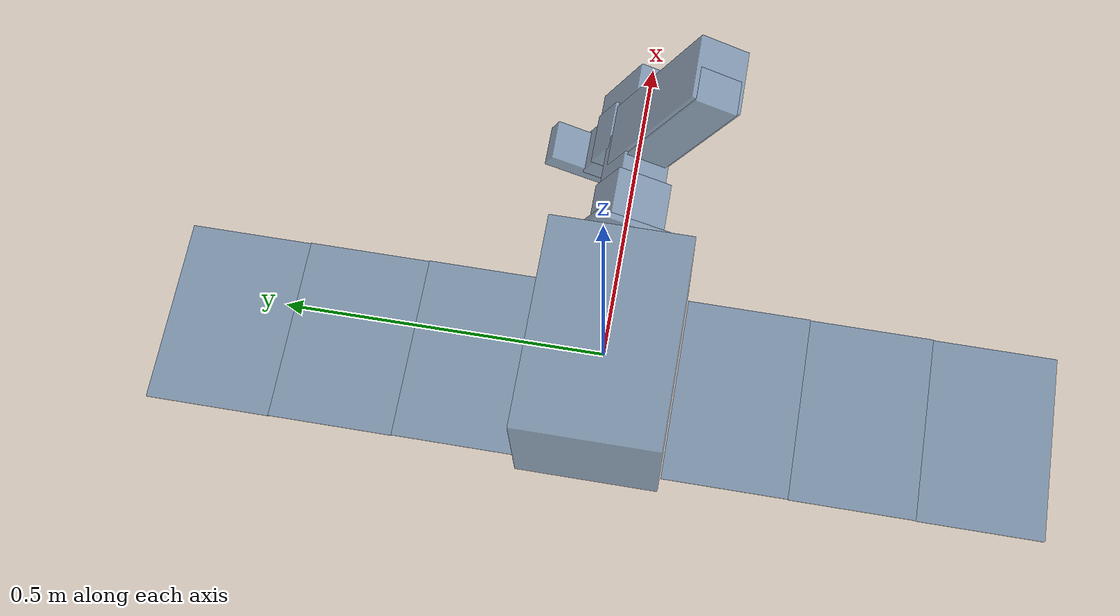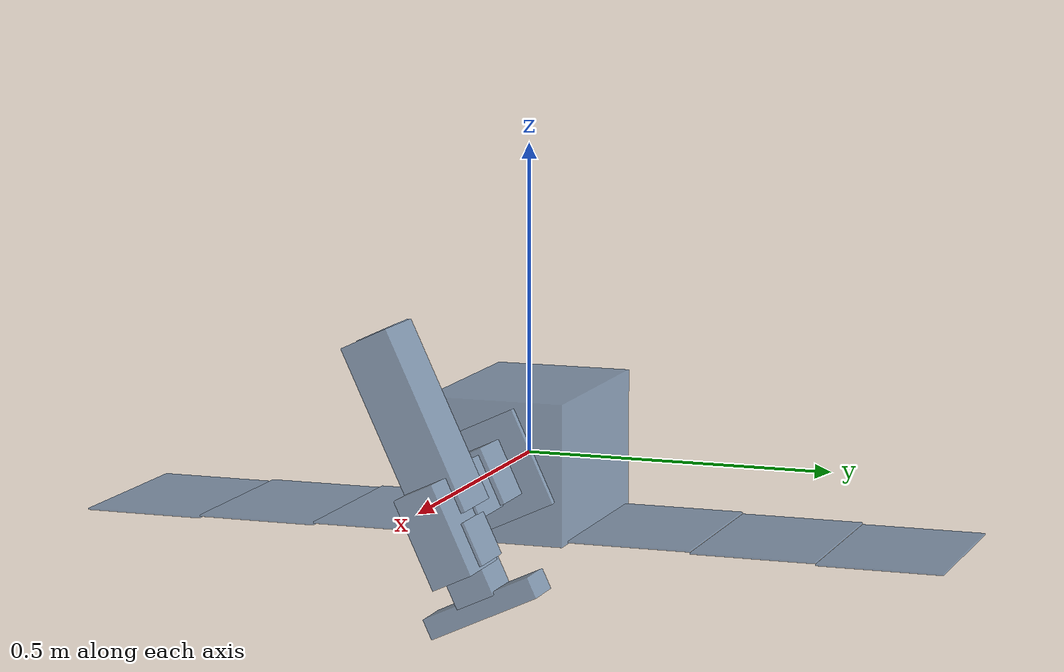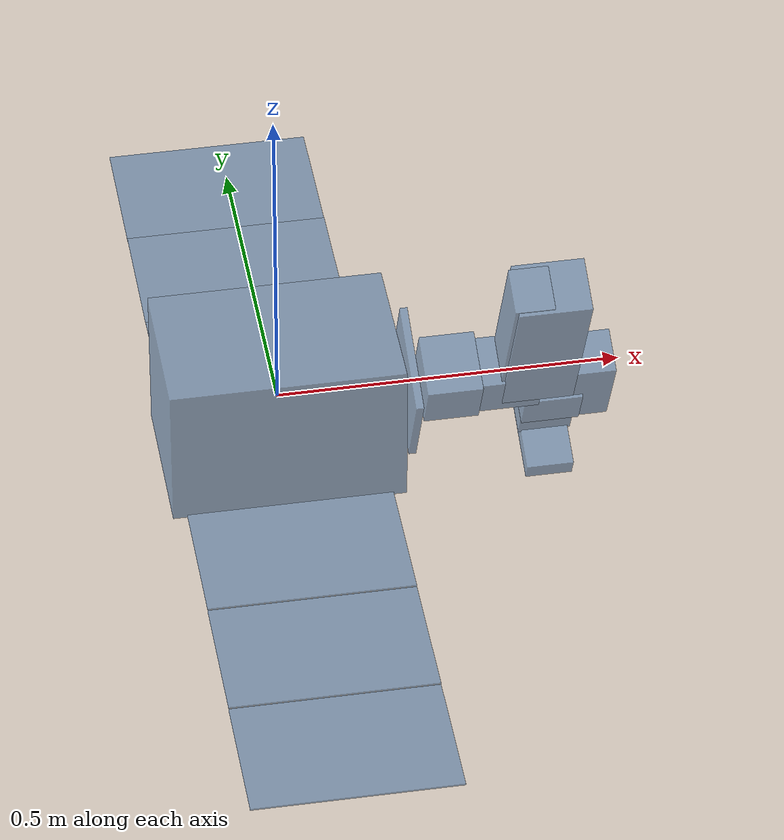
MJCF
<?xml version='1.0' encoding='utf-8'?>
<mujoco model="r2_locked_2p_equality_6r2p">
  <compiler angle="radian" autolimits="false" balanceinertia="false" boundmass="0" boundinertia="0" discardvisual="false" fusestatic="false" inertiafromgeom="false" />
  <option timestep="0.00025000000000000001" gravity="0 0 0" integrator="RK4" jacobian="dense" cone="elliptic">
    <flag contact="disable" />
  </option>
  <default>
    <joint damping="0" frictionloss="0" armature="0" stiffness="0" />
    <geom contype="0" conaffinity="0" density="0" />
  </default>
  <worldbody>
    <body name="spacecraft_bus">
      <freejoint name="servicer_free" align="false" />
      <inertial pos="-0.0119840711789168 -6.6595220797882536e-07 0.0007839544760700856" mass="17.26823279235072" quat="0.70710757303405303 0.70709419805908458 -0.0028945618369108214 0.0028804063678390837" diaginertia="0.12234548002716673 0.23074178061430084 0.23221057680550161" />
      <body name="bus_primary_structure_candidate_v1" pos="0 0 0" quat="1 0 0 0">
        <inertial pos="0.031218994211701909 1.905526877979096e-06 2.344297084187758e-05" mass="6.0349806076492811" quat="0.99999997724855116 -2.2429501335127842e-05 0.0002108749256763526 2.3056026987283696e-05" diaginertia="0.071229696771779566 0.10797810852551407 0.10799032761402258" />
        <geom name="visual_bus_primary_structure_candidate_v1_0" type="box" pos="0 0 0" quat="1 0 0 0" size="0.17025000000000001 0.11315 0.11315" rgba="0.42 0.56 0.72 0.7" contype="0" conaffinity="0" group="1" />
      </body>
      <body name="D_BUS_MATE_PHYSICAL" pos="0.18525 0 0" quat="0.70710678118654746 0 0.70710678118654757 0">
        <body name="D_BUS_M6_PATTERN" pos="8.6366069999999998e-05 1.5994150999999999e-05 0" quat="0.97629598067690637 0 0 0.21643973321485527">
          <body name="load_bridge_candidate" pos="0 0 0" quat="1 0 0 0">
            <inertial pos="-1.2725692226922191e-10 -1.072691633523576e-10 0.0053750000000000742" mass="0.70219545800000005" quat="0.97367705150808936 -1.3561112753724747e-19 -2.9676140630944835e-20 -0.22793200601607824" diaginertia="0.0015679069727329111 0.0015679069727329205 0.0031222893683617043" />
            <geom name="visual_load_bridge_candidate_0" type="box" pos="-1.2725692226922191e-10 -1.072691633523576e-10 0.0053750000000000742" quat="1 0 0 0" size="0.080000000000000002 0.080000000000000002 0.0053749999999999996" rgba="0.42 0.56 0.72 0.7" contype="0" conaffinity="0" group="1" />
            <body name="m3r_lumped_link" pos="4.2351647362715017e-21 0 0.022749999999999989" quat="1 0 0 0">
              <inertial pos="-1.2725692881822051e-10 -1.072691664294674e-10 -0.0046120551126256903" mass="0.76190000000000002" quat="1 0 0 0" diaginertia="0.001808962466764922 0.001808962466764922 0.0035940027551963792" />
              <body name="base_link" pos="-8.5033656693770215e-05 2.2004275556030842e-05 0" quat="1 0 0 0">
                <inertial pos="-7.8490000000000006e-06 -1.1531e-06 0.029840999999999999" mass="0.83660000000000001" quat="0.99999999998050726 0 0 -6.2438342123751554e-06" diaginertia="0.0013303999998751234 0.0021311900001248765 0.0027587699999999998" />
                <geom name="visual_base_link_0" type="box" pos="8.499917997718473e-05 -2.1998530026736549e-05 0.042479995727539063" quat="1 0 0 0" size="0.046000001612480731 0.04600000069348073 0.040074996948242188" rgba="0.42 0.56 0.72 0.7" contype="0" conaffinity="0" group="1" />
                <body name="link1" pos="-8.4159999999999994e-05 0 0.084650000000000003" quat="1 0 0 0">
                  <joint name="joint1" type="hinge" axis="0 0 1" pos="0 0 0" limited="true" range="-2.7999999999999998 2.7999999999999998" />
                  <inertial pos="0.00011361455295162701 -0.00061631952705132299 0.0236476372671394" mass="0.1613" quat="0.31977478086382516 0.63066955652187029 0.63066955652187018 0.31977478086382544" diaginertia="0.00015464000000000002 0.00021341290537689304 0.000272817094623107" />
                  <geom name="visual_link1_0" type="box" pos="0.005269996107382928 -0.00014899511224148251 0.038674981689453138" quat="1 0 0 0" size="0.043451991222638417 0.038625011149426861 0.049274993896484376" rgba="0.42 0.56 0.72 0.7" contype="0" conaffinity="0" group="1" />
                  <body name="link2" pos="0.020084000000000001 0.031625 0.055550000000000002" quat="0.70710548251123639 -0.70710807985947366 0 0">
                    <joint name="joint2" type="hinge" axis="0 0 -1" pos="0 0 0" limited="true" range="-3.1400000000000001 0" />
                    <inertial pos="-0.13225622308887999 -0.0030617036386309002 -0.030830696703020501" mass="1.3266" quat="0.99999676527968562 -0.0025189343337732777 0.0003521859902678853 1.910538619037344e-05" diaginertia="0.00073373398932560438 0.012559863568678083 0.01281388244199631" />
                    <geom name="visual_link2_0" type="box" pos="-0.13174698905284671 -3.6001805988717522e-05 -0.031355022808059033" quat="1 0 0 0" size="0.16049999358876044 0.028500020753961821 0.034000033151307701" rgba="0.42 0.56 0.72 0.7" contype="0" conaffinity="0" group="1" />
                    <body name="link3" pos="-0.26400000000000001 0 0" quat="1 0 0 0">
                      <joint name="joint3" type="hinge" axis="0 0 1" pos="0 0 0" limited="true" range="-3.1400000000000001 0" />
                      <inertial pos="0.121040035791843 -0.053621107662794897 -0.0310137854608077" mass="0.83530000000000004" quat="0.99998889024404591 -0.00099130490408275694 -0.0035441352141068884 0.0029454725686692816" diaginertia="0.00046756443869106195 0.0063271532296793366 0.0064825123316296024" />
                      <geom name="visual_link3_0" type="box" pos="0.12220718575653169 -0.028827980387596309 -0.03103907740609459" quat="1 0 0 0" size="0.14891280663805281 0.052500011277768099 0.040125014069292621" rgba="0.42 0.56 0.72 0.7" contype="0" conaffinity="0" group="1" />
                      <body name="link4" pos="0.24260000000000001 -0.053999999999999999 -0.0016249999999999999" quat="1 0 0 0">
                        <joint name="joint4" type="hinge" axis="0 0 1" pos="0 0 0" limited="true" range="-1.8700000000000001 1.5700000000000001" />
                        <inertial pos="0.060820095629313599 -0.051171190661312198 -0.030299458623927002" mass="0.52000000000000002" quat="0.69689489084473655 0.67070156753387877 -0.17956493955902669 -0.17959217940451602" diaginertia="0.0003232105530213145 0.00066716476121395226 0.00088948468576473293" />
                        <geom name="visual_link4_0" type="box" pos="0.043413748174133203 -0.02835430394286825 -0.029989992086658659" quat="1 0 0 0" size="0.072941976037468895 0.0579786859205332 0.03338001641473437" rgba="0.42 0.56 0.72 0.7" contype="0" conaffinity="0" group="1" />
                        <body name="link5" pos="0.078308000000000003 -0.037499999999999999 -0.029999999999999999" quat="0.70710548251123639 -0.70710807985947366 0 0">
                          <joint name="joint5" type="hinge" axis="0 0 1" pos="0 0 0" limited="true" range="-1.5700000000000001 1.5700000000000001" />
                          <inertial pos="-0.0050280205898251698 1.7386620669236401e-06 0.038623323632675503" mass="0.38300000000000001" quat="0.64607762444149208 -0.58316489420647422 -0.36748548757922656 -0.32780607953460572" diaginertia="0.00015733463979509366 0.00021223667927982521 0.00021742868092508127" />
                          <geom name="visual_link5_0" type="box" pos="-0.001675022376686926 -8.702040021112134e-05 0.036738990482896389" quat="1 0 0 0" size="0.035000001295327959 0.038499998886510428 0.042519987792984409" rgba="0.42 0.56 0.72 0.7" contype="0" conaffinity="0" group="1" />
                          <body name="link6" pos="0.023692000000000001 0 0.040000000000000001" quat="0.70710548251123639 -0 0.70710807985947366 -0">
                            <joint name="joint6" type="hinge" axis="0 0 1" pos="0 0 0" limited="true" range="-3.1400000000000001 3.1400000000000001" />
                            <inertial pos="3.7641872712712602e-06 -0.00010090881994667701 0.0253308606425965" mass="0.36630000000000001" quat="0.70710678118654757 0 -0.70710678118654746 0" diaginertia="0.00013966 0.00015553999999999999 0.00015553999999999999" />
                            <geom name="visual_link6_0" type="box" pos="-3.6472411839922482e-05 7.391637363161202e-06 0.026795693445186342" quat="1 0 0 0" size="0.038500023690851745 0.03175225075284524 0.030750055666308961" rgba="0.42 0.56 0.72 0.7" contype="0" conaffinity="0" group="1" />
                            <body name="gripper_link" pos="0 0 0.15970999999999999" quat="0.70710548251123639 0 -0.70710807985947366 0">
                              <inertial pos="-0.11400456131826001 7.3080932858954104e-05 -8.0982546862839997e-08" mass="0.181800159145243" quat="0.5003738811260201 0.50042401477367626 0.49958642528150288 0.49961504000493057" diaginertia="5.8508142684152297e-05 0.00020521353674824832 0.00023238627147926413" />
                              <geom name="visual_gripper_link_0" type="box" pos="-0.09061401748657226 7.4310302734387212e-06 3.702545166015675e-05" quat="1 0 0 0" size="0.016549999237060551 0.092034835815429705 0.034233333587646485" rgba="0.42 0.56 0.72 0.7" contype="0" conaffinity="0" group="1" />
                              <site name="tool_origin" pos="0 0 0" size="0.008" rgba="1 0.2 0.1 1" group="3" />
                              <body name="gripper_left" pos="-0.042091000000000003 2.7531000000000001e-05 -1.3030999999999999e-05" quat="0.70710548251123639 0 0 -0.70710807985947366">
                                <joint name="gripper_joint1" type="slide" axis="1 0 0" pos="0 0 0" limited="true" range="0 0.071499999999999994" />
                                <inertial pos="0.0093715460594514192 -0.018351440900627899 -0.0021305081322361701" mass="0.042327895241615801" quat="0.92219166680733022 -0.070162254522603273 -0.010048447640092507 0.38018260929643793" diaginertia="8.5548862838440899e-06 1.0839342746622605e-05 1.1377372612026584e-05" />
                              </body>
                              <body name="gripper_right" pos="-0.042091000000000003 -2.7531000000000001e-05 1.3030999999999999e-05" quat="0.70710548251123639 0 0 0.70710807985947366">
                                <joint name="gripper_joint2" type="slide" axis="1 0 0" pos="0 0 0" limited="true" range="0 0.071499999999999994" />
                                <inertial pos="0.0093715459993667094 0.018351441005971299 0.0021305082299375401" mass="0.042327894956127397" quat="0.92219166525727958 -0.070162264866198296 0.010048457142864441 -0.38018261089626271" diaginertia="8.5548862204584816e-06 1.0839342686049004e-05 1.1377372586407632e-05" />
                              </body>
                            </body>
                          </body>
                        </body>
                      </body>
                    </body>
                  </body>
                </body>
              </body>
            </body>
          </body>
        </body>
      </body>
      <body name="M_DYNAMICS_NONPHYSICAL" pos="0.18525 0 0" quat="0.70710678118654746 0 0.70710678118654757 0" />
      <body name="solar_r2_left_c01_snapshot" pos="0 0.1154 -0.10815" quat="6.123233995736766e-17 0 0 1">
        <inertial pos="0 -0.231153846 0.0090153850000000008" mass="0.78000000000000003" quat="0.028472688960347225 -0.70653330139729953 -0.70653330139729953 -0.028472688960347218" diaginertia="0.0047454226158757679 0.030004785546499841 0.033359362930624081" />
        <geom name="visual_solar_r2_left_c01_snapshot_0" type="box" pos="0 -0.10000000000000001 0" quat="0.70710678118654746 0.70710678118654757 0 0" size="0.14999999999999999 0.00125 0.10000000000000001" rgba="0.42 0.56 0.72 0.7" contype="0" conaffinity="0" group="1" />
        <geom name="visual_solar_r2_left_c01_snapshot_1" type="box" pos="0 -0.29999999999999999 -0.0030000000000000001" quat="0.70710678118654746 0.70710678118654757 0 0" size="0.14999999999999999 0.00125 0.10000000000000001" rgba="0.42 0.56 0.72 0.7" contype="0" conaffinity="0" group="1" />
        <geom name="visual_solar_r2_left_c01_snapshot_2" type="box" pos="0 -0.5 -0.0060000000000000001" quat="0.70710678118654746 0.70710678118654757 0 0" size="0.14999999999999999 0.00125 0.10000000000000001" rgba="0.42 0.56 0.72 0.7" contype="0" conaffinity="0" group="1" />
      </body>
      <body name="solar_r2_right_c01_snapshot" pos="0 -0.1154 -0.10815" quat="1 0 0 0">
        <inertial pos="0 -0.231153846 0.0090153850000000008" mass="0.78000000000000003" quat="0.028472688960347225 -0.70653330139729953 -0.70653330139729953 -0.028472688960347218" diaginertia="0.0047454226158757679 0.030004785546499841 0.033359362930624081" />
        <geom name="visual_solar_r2_right_c01_snapshot_0" type="box" pos="0 -0.10000000000000001 0" quat="0.70710678118654746 0.70710678118654757 0 0" size="0.14999999999999999 0.00125 0.10000000000000001" rgba="0.42 0.56 0.72 0.7" contype="0" conaffinity="0" group="1" />
        <geom name="visual_solar_r2_right_c01_snapshot_1" type="box" pos="0 -0.29999999999999999 -0.0030000000000000001" quat="0.70710678118654746 0.70710678118654757 0 0" size="0.14999999999999999 0.00125 0.10000000000000001" rgba="0.42 0.56 0.72 0.7" contype="0" conaffinity="0" group="1" />
        <geom name="visual_solar_r2_right_c01_snapshot_2" type="box" pos="0 -0.5 -0.0060000000000000001" quat="0.70710678118654746 0.70710678118654757 0 0" size="0.14999999999999999 0.00125 0.10000000000000001" rgba="0.42 0.56 0.72 0.7" contype="0" conaffinity="0" group="1" />
      </body>
    </body>
  </worldbody>
  <actuator>
    <motor name="motor_joint1" joint="joint1" gear="1" ctrllimited="false" />
    <motor name="motor_joint2" joint="joint2" gear="1" ctrllimited="false" />
    <motor name="motor_joint3" joint="joint3" gear="1" ctrllimited="false" />
    <motor name="motor_joint4" joint="joint4" gear="1" ctrllimited="false" />
    <motor name="motor_joint5" joint="joint5" gear="1" ctrllimited="false" />
    <motor name="motor_joint6" joint="joint6" gear="1" ctrllimited="false" />
  </actuator>
  <equality>
    <joint name="soft_lock_gripper_joint1" joint1="gripper_joint1" polycoef="0.035749999999999997 0 0 0 0" solref="0.0005 1" solimp="0.9999 0.99999 0.0001 0.5 2" active="true" />
    <joint name="soft_lock_gripper_joint2" joint1="gripper_joint2" polycoef="0.035749999999999997 0 0 0 0" solref="0.0005 1" solimp="0.9999 0.99999 0.0001 0.5 2" active="true" />
  </equality>
  <keyframe>
    <key name="precontact_initial" qpos="0.12 -0.080000000000000002 0.040000000000000001 0.98434066952062715 0.1004429254612885 -0.080354340369030788 0.12053151055354618 -1.4722592995215019e-05 -1.0482002296028674 -1.3989828152470147 -1.2200100679438755 3.673218594813444e-06 1.8395811591279014e-05 0.035749999999999997 0.035749999999999997" />
  </keyframe>
</mujoco>
